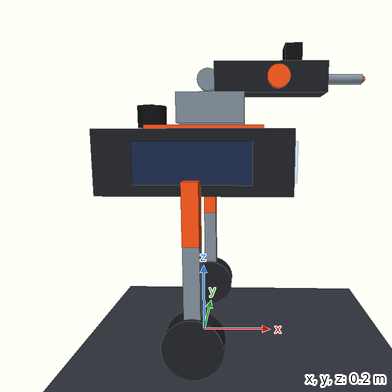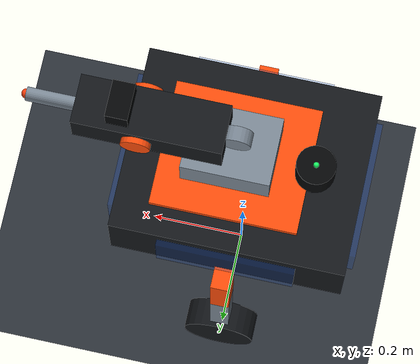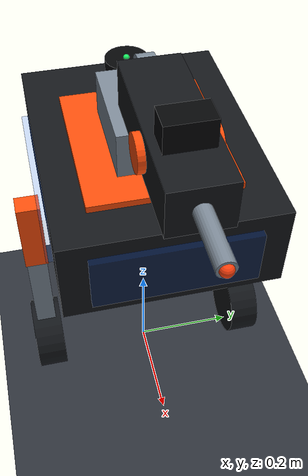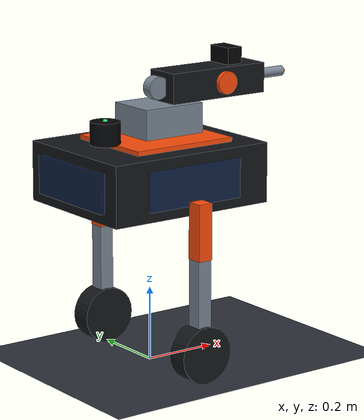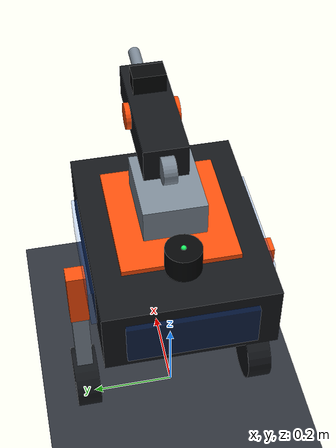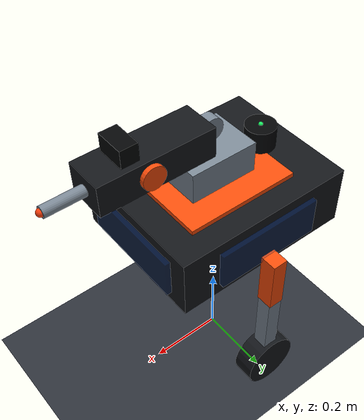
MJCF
<?xml version="1.0" encoding="utf-8"?>
<mujoco model="actuatex_sentinel">
  <compiler angle="radian" autolimits="true" inertiafromgeom="false"/>
  <option timestep="0.002" gravity="0 0 -9.81" integrator="implicitfast"
          cone="elliptic" impratio="10" iterations="80" ls_iterations="20"/>
  <visual>
    <global offwidth="1280" offheight="720"/>
    <quality shadowsize="2048"/>
  </visual>

  <default>
    <joint damping="0" frictionloss="0"/>
    <default class="leg_joint">
      <joint type="hinge" axis="0 1 0" armature="0.005" limited="true"/>
    </default>
    <default class="wheel_joint">
      <joint type="hinge" axis="0 1 0" armature="0.0110592" limited="false"/>
    </default>
    <default class="gimbal_joint">
      <joint type="hinge" armature="0.00072" limited="true"/>
    </default>
    <default class="flywheel_joint">
      <joint type="hinge" axis="0 1 0" armature="0.00002" limited="false"/>
    </default>
    <default class="feeder_joint">
      <joint type="hinge" axis="0 1 0" armature="0.000083" limited="false"/>
    </default>
    <default class="robot_collision">
      <geom contype="1" conaffinity="0" condim="6"
            friction="1.0 0.005 0.0001" solref="0.015 1"
            solimp="0.92 0.98 0.001" margin="0.0005"/>
    </default>
    <default class="robot_visual">
      <geom contype="0" conaffinity="0" group="2"/>
    </default>
    <default class="armor_collision">
      <geom contype="1" conaffinity="0" condim="4"
            friction="0.8 0.005 0.0001" solref="0.01 1"
            solimp="0.95 0.99 0.001"/>
    </default>
  </default>

  <asset>
    <material name="actuatex_orange" rgba="1.0 0.30 0.04 1.0"/>
    <material name="graphite" rgba="0.075 0.085 0.10 1.0"/>
    <material name="metal" rgba="0.48 0.53 0.58 1.0"/>
    <material name="sensor_black" rgba="0.015 0.02 0.025 1.0"/>
    <material name="armor_blue" rgba="0.04 0.34 0.96 0.82"/>
    <material name="floor_material" rgba="0.17 0.19 0.22 1.0"/>
  </asset>

  <worldbody>
    <light name="key_light" pos="1 -2 4" dir="-0.2 0.3 -1" diffuse="0.9 0.9 0.9"/>
    <light name="fill_light" pos="-2 2 2.5" dir="0.4 -0.3 -1" diffuse="0.35 0.38 0.45"/>
    <geom name="floor" type="plane" size="0 0 0.1" material="floor_material"
          contype="0" conaffinity="1" condim="6"
          friction="1.0 0.005 0.0001" solref="0.015 1"
          solimp="0.92 0.98 0.001"/>

    <body name="base_link" pos="0 0 0.515">
      <freejoint name="root"/>
      <inertial pos="0 0 0" mass="10.5"
                diaginertia="0.14875 0.22400 0.32830"/>
      <geom name="base_collision" class="robot_collision" type="box"
            size="0.24 0.19 0.08" material="graphite"/>
      <geom name="top_plate_visual" class="robot_visual" type="box"
            pos="0.02 0 0.086" size="0.15 0.13 0.006"
            material="actuatex_orange"/>
      <site name="imu_site" pos="0 0 0.02" size="0.008" rgba="0.2 0.8 1 1"/>

      <body name="left_upper_link" pos="0 0.22 -0.04">
        <joint name="left_hip_joint" class="leg_joint" range="-1.0 1.0"/>
        <inertial pos="0 0 -0.075" mass="0.16"
                  diaginertia="0.000327 0.000321 0.000048"/>
        <geom name="left_upper_collision" class="robot_collision" type="box"
              pos="0 0 -0.075" size="0.020 0.0225 0.075"
              material="actuatex_orange"/>
        <body name="left_lower_link" pos="0 0 -0.15">
          <joint name="left_knee_joint" class="leg_joint" range="-1.5 0.2"/>
          <inertial pos="0 0 -0.125" mass="0.36"
                    diaginertia="0.001923 0.001923 0.000096"/>
          <geom name="left_lower_collision" class="robot_collision" type="box"
                pos="0 0 -0.125" size="0.020 0.020 0.125" material="metal"/>
          <body name="left_wheel_link" pos="0 0 -0.25">
            <joint name="left_wheel_joint" class="wheel_joint"/>
            <inertial pos="0 0 0" mass="1.22"
                      diaginertia="0.002082 0.003431 0.002082"/>
            <geom name="left_wheel_collision" class="robot_collision"
                  type="cylinder" size="0.075 0.030"
                  quat="0.7071067811865476 0.7071067811865475 0 0"
                  material="graphite"/>
          </body>
        </body>
      </body>

      <body name="right_upper_link" pos="0 -0.22 -0.04">
        <joint name="right_hip_joint" class="leg_joint" range="-1.0 1.0"/>
        <inertial pos="0 0 -0.075" mass="0.16"
                  diaginertia="0.000327 0.000321 0.000048"/>
        <geom name="right_upper_collision" class="robot_collision" type="box"
              pos="0 0 -0.075" size="0.020 0.0225 0.075"
              material="actuatex_orange"/>
        <body name="right_lower_link" pos="0 0 -0.15">
          <joint name="right_knee_joint" class="leg_joint" range="-1.5 0.2"/>
          <inertial pos="0 0 -0.125" mass="0.36"
                    diaginertia="0.001923 0.001923 0.000096"/>
          <geom name="right_lower_collision" class="robot_collision" type="box"
                pos="0 0 -0.125" size="0.020 0.020 0.125" material="metal"/>
          <body name="right_wheel_link" pos="0 0 -0.25">
            <joint name="right_wheel_joint" class="wheel_joint"/>
            <inertial pos="0 0 0" mass="1.22"
                      diaginertia="0.002082 0.003431 0.002082"/>
            <geom name="right_wheel_collision" class="robot_collision"
                  type="cylinder" size="0.075 0.030"
                  quat="0.7071067811865476 0.7071067811865475 0 0"
                  material="graphite"/>
          </body>
        </body>
      </body>

      <body name="gimbal_yaw_carrier" pos="0.03 0 0.10">
        <joint name="gimbal_yaw_joint" class="gimbal_joint" axis="0 0 1"
               range="-3.14159265359 3.14159265359"/>
        <inertial pos="0 0 0.04" mass="0.85"
                  diaginertia="0.001842 0.002748 0.003683"/>
        <geom name="yaw_carrier_collision" class="robot_collision" type="box"
              pos="0 0 0.04" size="0.09 0.07 0.04" material="metal"/>

        <body name="gimbal_pitch_assembly" pos="0.03 0 0.12">
          <joint name="gimbal_pitch_joint" class="gimbal_joint" axis="0 1 0"
                 range="-0.35 0.55"/>
          <inertial pos="0.13 0 0" mass="0.75"
                    diaginertia="0.001025 0.006025 0.006250"/>
          <geom name="pitch_assembly_collision" class="robot_collision" type="box"
                pos="0.13 0 0" size="0.15 0.05 0.04" material="graphite"/>
          <geom name="barrel_visual" class="robot_visual" type="cylinder"
                pos="0.30 0 0" size="0.014 0.08"
                quat="0.7071067811865476 0 0.7071067811865475 0"
                material="metal"/>
          <site name="muzzle_site" pos="0.38 0 0" size="0.010"
                rgba="1.0 0.25 0.05 1"/>

          <body name="left_flywheel_link" pos="0.15 0.052 0">
            <joint name="left_flywheel_joint" class="flywheel_joint"/>
            <inertial pos="0 0 0" mass="0.12"
                      diaginertia="0.000031 0.000061 0.000031"/>
            <geom name="left_flywheel_visual" class="robot_visual"
                  type="cylinder" size="0.030 0.010"
                  quat="0.7071067811865476 0.7071067811865475 0 0"
                  material="actuatex_orange"/>
          </body>
          <body name="right_flywheel_link" pos="0.15 -0.052 0">
            <joint name="right_flywheel_joint" class="flywheel_joint"/>
            <inertial pos="0 0 0" mass="0.12"
                      diaginertia="0.000031 0.000061 0.000031"/>
            <geom name="right_flywheel_visual" class="robot_visual"
                  type="cylinder" size="0.030 0.010"
                  quat="0.7071067811865476 0.7071067811865475 0 0"
                  material="actuatex_orange"/>
          </body>
          <body name="feeder_link" pos="-0.04 0 0">
            <joint name="feeder_joint" class="feeder_joint"/>
            <inertial pos="0 0 0" mass="0.18"
                      diaginertia="0.000055 0.000083 0.000055"/>
            <geom name="feeder_visual" class="robot_visual"
                  type="cylinder" size="0.030 0.015"
                  quat="0.7071067811865476 0.7071067811865475 0 0"
                  material="metal"/>
          </body>
          <body name="camera_link" pos="0.19 0 0.065">
            <inertial pos="0 0 0" mass="0.15"
                      diaginertia="0.000040 0.000065 0.000075"/>
            <geom name="camera_visual" class="robot_visual" type="box"
                  size="0.0225 0.0375 0.0225" material="sensor_black"/>
            <camera name="tracking_camera" mode="fixed" fovy="82"
                    quat="0.7071067811865476 0 -0.7071067811865475 0"/>
          </body>
        </body>
      </body>

      <body name="mid360_link" pos="-0.14 0 0.09">
        <inertial pos="0 0 0.030" mass="0.265"
                  diaginertia="0.00023 0.00023 0.00018"/>
        <geom name="mid360_visual" class="robot_visual" type="cylinder"
              pos="0 0 0.030" size="0.040 0.030" material="sensor_black"/>
        <site name="mid360_site" pos="0 0 0.060" size="0.006"
              rgba="0.1 1.0 0.4 1"/>
      </body>

      <body name="front_armor_link" pos="0.246 0 0">
        <inertial pos="0 0 0" mass="0.15"
                  diaginertia="0.00020 0.00038 0.00058"/>
        <geom name="front_armor" class="armor_collision" type="box"
              size="0.006 0.14 0.05" material="armor_blue"/>
        <site name="front_armor_site" type="box" size="0.007 0.141 0.051"
              rgba="0.04 0.34 0.96 0.15"/>
      </body>
      <body name="rear_armor_link" pos="-0.246 0 0">
        <inertial pos="0 0 0" mass="0.15"
                  diaginertia="0.00020 0.00038 0.00058"/>
        <geom name="rear_armor" class="armor_collision" type="box"
              size="0.006 0.14 0.05" material="armor_blue"/>
        <site name="rear_armor_site" type="box" size="0.007 0.141 0.051"
              rgba="0.04 0.34 0.96 0.15"/>
      </body>
      <body name="left_armor_link" pos="0 0.196 0">
        <inertial pos="0 0 0" mass="0.15"
                  diaginertia="0.00038 0.00020 0.00058"/>
        <geom name="left_armor" class="armor_collision" type="box"
              size="0.14 0.006 0.05" material="armor_blue"/>
        <site name="left_armor_site" type="box" size="0.141 0.007 0.051"
              rgba="0.04 0.34 0.96 0.15"/>
      </body>
      <body name="right_armor_link" pos="0 -0.196 0">
        <inertial pos="0 0 0" mass="0.15"
                  diaginertia="0.00038 0.00020 0.00058"/>
        <geom name="right_armor" class="armor_collision" type="box"
              size="0.14 0.006 0.05" material="armor_blue"/>
        <site name="right_armor_site" type="box" size="0.141 0.007 0.051"
              rgba="0.04 0.34 0.96 0.15"/>
      </body>
    </body>
  </worldbody>

  <!-- Actuator order exactly matches tasks.robomaster.contract.ALL_JOINT_NAMES. -->
  <actuator>
    <motor name="left_hip_torque" joint="left_hip_joint" gear="1"
           ctrllimited="true" ctrlrange="-30 30"/>
    <motor name="left_knee_torque" joint="left_knee_joint" gear="1"
           ctrllimited="true" ctrlrange="-30 30"/>
    <motor name="right_hip_torque" joint="right_hip_joint" gear="1"
           ctrllimited="true" ctrlrange="-30 30"/>
    <motor name="right_knee_torque" joint="right_knee_joint" gear="1"
           ctrllimited="true" ctrlrange="-30 30"/>
    <motor name="left_wheel_torque" joint="left_wheel_joint" gear="1"
           ctrllimited="true" ctrlrange="-12 12"/>
    <motor name="right_wheel_torque" joint="right_wheel_joint" gear="1"
           ctrllimited="true" ctrlrange="-12 12"/>
    <motor name="gimbal_yaw_torque" joint="gimbal_yaw_joint" gear="1"
           ctrllimited="true" ctrlrange="-2 2"/>
    <motor name="gimbal_pitch_torque" joint="gimbal_pitch_joint" gear="1"
           ctrllimited="true" ctrlrange="-2 2"/>
    <motor name="left_flywheel_torque" joint="left_flywheel_joint" gear="1"
           ctrllimited="true" ctrlrange="-0.45 0.45"/>
    <motor name="right_flywheel_torque" joint="right_flywheel_joint" gear="1"
           ctrllimited="true" ctrlrange="-0.45 0.45"/>
    <motor name="feeder_torque" joint="feeder_joint" gear="1"
           ctrllimited="true" ctrlrange="-5 5"/>
  </actuator>

  <sensor>
    <framequat name="base_orientation" objtype="body" objname="base_link"/>
    <gyro name="base_angular_velocity" site="imu_site"/>
    <accelerometer name="base_linear_acceleration" site="imu_site"/>
    <framepos name="muzzle_position" objtype="site" objname="muzzle_site"/>
    <framequat name="muzzle_orientation" objtype="site" objname="muzzle_site"/>
    <framepos name="mid360_position" objtype="site" objname="mid360_site"/>
    <framequat name="mid360_orientation" objtype="site" objname="mid360_site"/>

    <jointpos name="left_hip_position" joint="left_hip_joint"/>
    <jointpos name="left_knee_position" joint="left_knee_joint"/>
    <jointpos name="right_hip_position" joint="right_hip_joint"/>
    <jointpos name="right_knee_position" joint="right_knee_joint"/>
    <jointpos name="left_wheel_position" joint="left_wheel_joint"/>
    <jointpos name="right_wheel_position" joint="right_wheel_joint"/>
    <jointpos name="gimbal_yaw_position" joint="gimbal_yaw_joint"/>
    <jointpos name="gimbal_pitch_position" joint="gimbal_pitch_joint"/>
    <jointpos name="left_flywheel_position" joint="left_flywheel_joint"/>
    <jointpos name="right_flywheel_position" joint="right_flywheel_joint"/>
    <jointpos name="feeder_position" joint="feeder_joint"/>

    <jointvel name="left_hip_velocity" joint="left_hip_joint"/>
    <jointvel name="left_knee_velocity" joint="left_knee_joint"/>
    <jointvel name="right_hip_velocity" joint="right_hip_joint"/>
    <jointvel name="right_knee_velocity" joint="right_knee_joint"/>
    <jointvel name="left_wheel_velocity" joint="left_wheel_joint"/>
    <jointvel name="right_wheel_velocity" joint="right_wheel_joint"/>
    <jointvel name="gimbal_yaw_velocity" joint="gimbal_yaw_joint"/>
    <jointvel name="gimbal_pitch_velocity" joint="gimbal_pitch_joint"/>
    <jointvel name="left_flywheel_velocity" joint="left_flywheel_joint"/>
    <jointvel name="right_flywheel_velocity" joint="right_flywheel_joint"/>
    <jointvel name="feeder_velocity" joint="feeder_joint"/>

    <actuatorfrc name="left_hip_effort" actuator="left_hip_torque"/>
    <actuatorfrc name="left_knee_effort" actuator="left_knee_torque"/>
    <actuatorfrc name="right_hip_effort" actuator="right_hip_torque"/>
    <actuatorfrc name="right_knee_effort" actuator="right_knee_torque"/>
    <actuatorfrc name="left_wheel_effort" actuator="left_wheel_torque"/>
    <actuatorfrc name="right_wheel_effort" actuator="right_wheel_torque"/>
    <actuatorfrc name="gimbal_yaw_effort" actuator="gimbal_yaw_torque"/>
    <actuatorfrc name="gimbal_pitch_effort" actuator="gimbal_pitch_torque"/>
    <actuatorfrc name="left_flywheel_effort" actuator="left_flywheel_torque"/>
    <actuatorfrc name="right_flywheel_effort" actuator="right_flywheel_torque"/>
    <actuatorfrc name="feeder_effort" actuator="feeder_torque"/>

    <touch name="front_armor_hit" site="front_armor_site"/>
    <touch name="rear_armor_hit" site="rear_armor_site"/>
    <touch name="left_armor_hit" site="left_armor_site"/>
    <touch name="right_armor_hit" site="right_armor_site"/>
  </sensor>

  <keyframe>
    <key name="home" qpos="0 0 0.515 1 0 0 0 0.35 -0.70 0 0.35 -0.70 0 0 0 0 0 0"/>
  </keyframe>
</mujoco>
